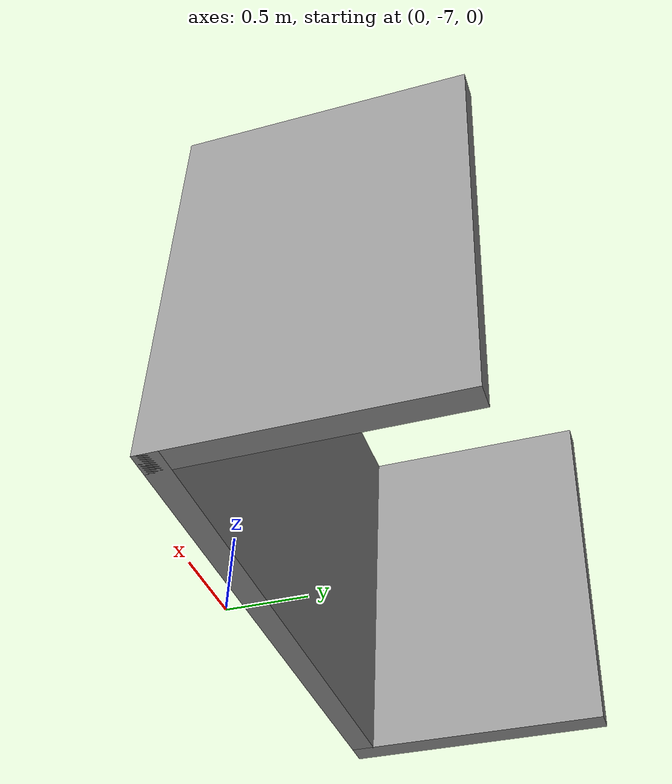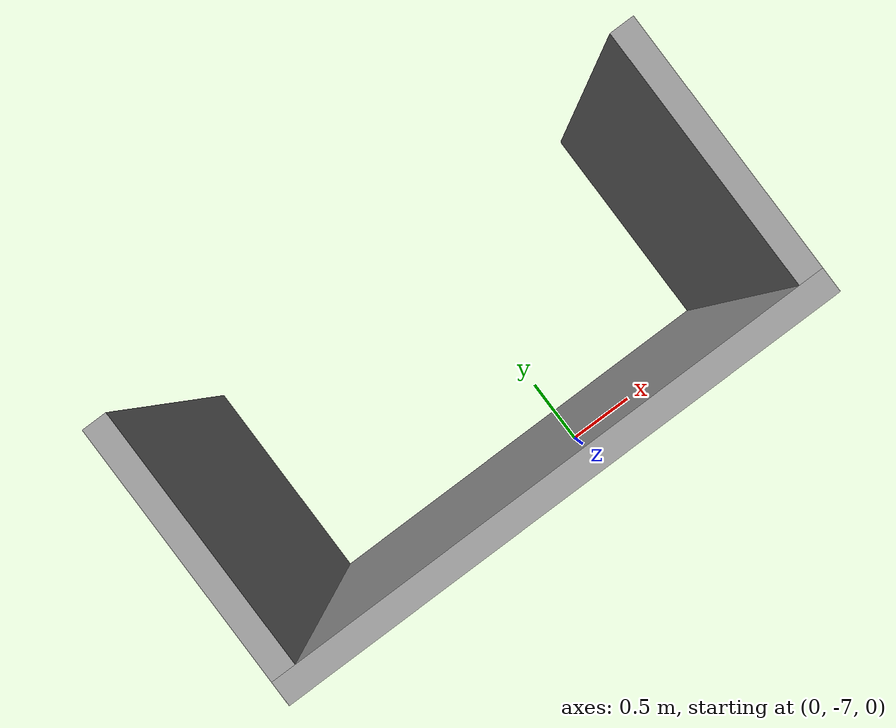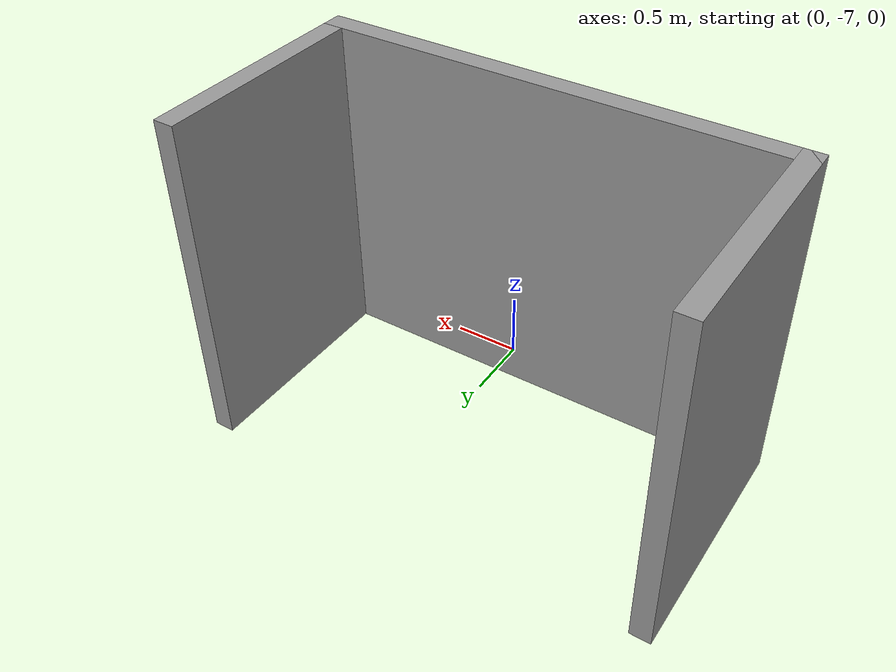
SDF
<?xml version='1.0'?>
<sdf version='1.6'>
  <model name='resthome'>
    <pose frame=''>-0.336127 -6.01522 0 0 -0 0</pose>
    <link name='Wall_0'>
      <collision name='Wall_0_Collision'>
        <geometry>
          <box>
            <size>3.5 0.15 2.5</size>
          </box>
        </geometry>
        <pose frame=''>0 0 1.25 0 -0 0</pose>
      </collision>
      <visual name='Wall_0_Visual'>
        <pose frame=''>0 0 1.25 0 -0 0</pose>
        <geometry>
          <box>
            <size>3.5 0.15 2.5</size>
          </box>
        </geometry>
        <material>
          <script>
            <uri>file://media/materials/scripts/gazebo.material</uri>
            <name>Gazebo/Grey</name>
          </script>
          <ambient>1 1 1 1</ambient>
        </material>
      </visual>
      <pose frame=''>0 -0.8 0 0 -0 0</pose>
    </link>
    <link name='Wall_2'>
      <collision name='Wall_2_Collision'>
        <geometry>
          <box>
            <size>1.75 0.15 2.5</size>
          </box>
        </geometry>
        <pose frame=''>0 0 1.25 0 -0 0</pose>
      </collision>
      <visual name='Wall_2_Visual'>
        <pose frame=''>0 0 1.25 0 -0 0</pose>
        <geometry>
          <box>
            <size>1.75 0.15 2.5</size>
          </box>
        </geometry>
        <material>
          <script>
            <uri>file://media/materials/scripts/gazebo.material</uri>
            <name>Gazebo/Grey</name>
          </script>
          <ambient>1 1 1 1</ambient>
        </material>
      </visual>
      <pose frame=''>-1.675 0 0 0 0 -1.5708</pose>
    </link>
    <link name='Wall_4'>
      <collision name='Wall_4_Collision'>
        <geometry>
          <box>
            <size>1.75 0.15 2.5</size>
          </box>
        </geometry>
        <pose frame=''>0 0 1.25 0 -0 0</pose>
      </collision>
      <visual name='Wall_4_Visual'>
        <pose frame=''>0 0 1.25 0 -0 0</pose>
        <geometry>
          <box>
            <size>1.75 0.15 2.5</size>
          </box>
        </geometry>
        <material>
          <script>
            <uri>file://media/materials/scripts/gazebo.material</uri>
            <name>Gazebo/Grey</name>
          </script>
          <ambient>1 1 1 1</ambient>
        </material>
      </visual>
      <pose frame=''>1.675 0 0 0 -0 1.5708</pose>
    </link>
    <static>1</static>
  </model>
</sdf>
